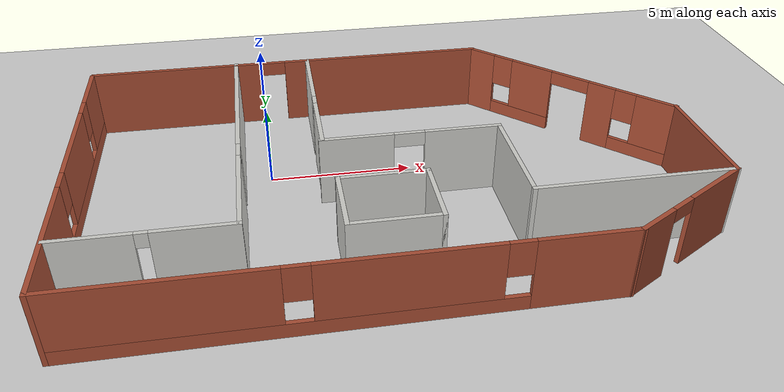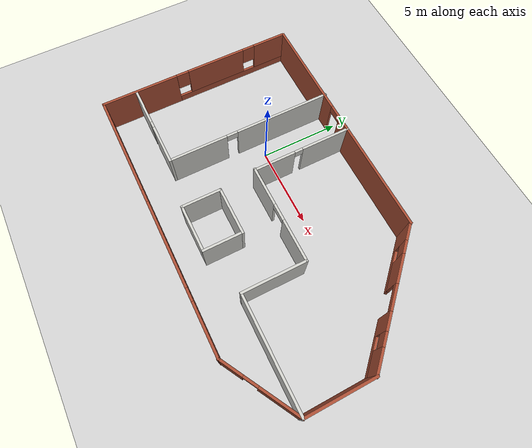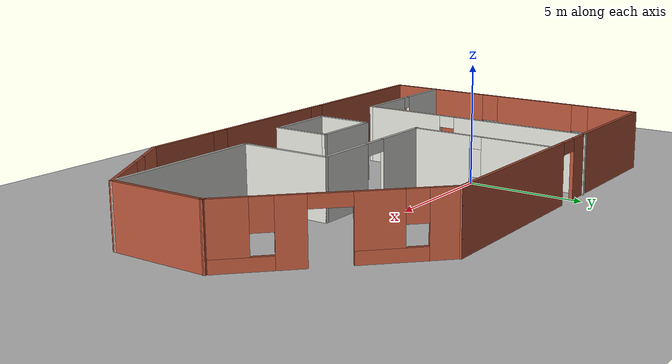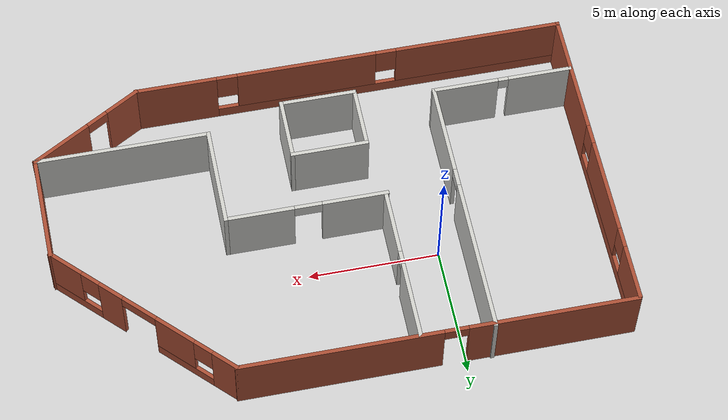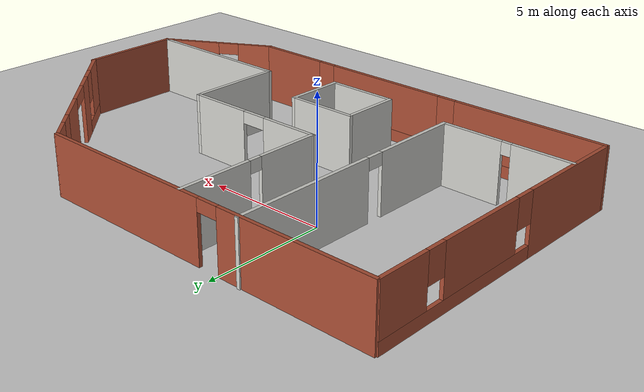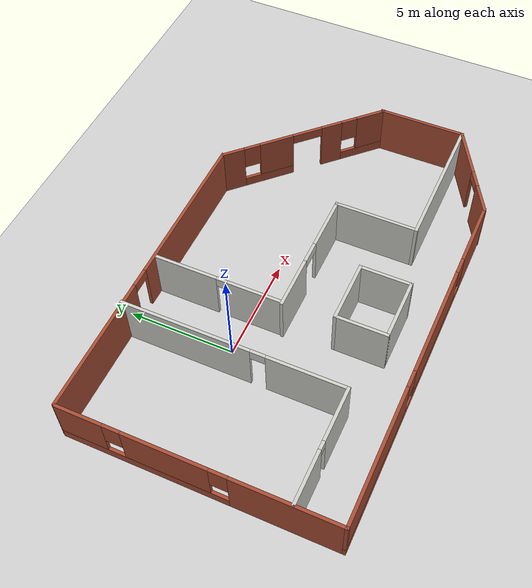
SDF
<sdf version="1.6">
 <world name="default">
  <light name="sun" type="directional">
   <pose>0 0 10 0 -0 0</pose>
   <diffuse>0.8 0.8 0.8 1</diffuse>
   <specular>0.2 0.2 0.2 1</specular>
   <attenuation>
    <range>1000</range>
    <constant>0.9</constant>
    <linear>0.01</linear>
    <quadratic>0.001</quadratic>
   </attenuation>
   <direction>-0.5 0.1 -0.9</direction>
  </light>
  <model name="ground_plane">
   <static>1</static>
   <link name="link">
    <collision name="collision">
     <geometry><plane><normal>0 0 1</normal><size>100 100</size></plane></geometry>
     <surface>
      <contact><collide_bitmask>65535</collide_bitmask></contact>
      <friction><ode><mu>100</mu><mu2>50</mu2></ode></friction>
     </surface>
    </collision>
    <visual name="visual">
     <cast_shadows>0</cast_shadows>
     <geometry><plane><normal>0 0 1</normal><size>100 100</size></plane></geometry>
     <material>
      <script><uri>file://media/materials/scripts/gazebo.material</uri><name>Gazebo/Grey</name></script>
     </material>
    </visual>
   </link>
  </model>
  <gravity>0 0 -9.8</gravity>
  <magnetic_field>6e-06 2.3e-05 -4.2e-05</magnetic_field>
  <atmosphere type="adiabatic"/>
  <physics name="default_physics" default="0" type="ode">
   <max_step_size>0.001</max_step_size>
   <real_time_factor>1</real_time_factor>
   <real_time_update_rate>1000</real_time_update_rate>
  </physics>
  <scene><ambient>0.4 0.4 0.4 1</ambient><background>0.7 0.7 0.7 1</background><shadows>1</shadows></scene>
  <spherical_coordinates>
   <surface_model>EARTH_WGS84</surface_model>
   <latitude_deg>0</latitude_deg>
   <longitude_deg>0</longitude_deg>
   <elevation>0</elevation>
   <heading_deg>0</heading_deg>
  </spherical_coordinates>
  <model name="p1">
   <pose>4.01933 -1.6816 0 0 -0 0</pose>
   <link name="Wall_1">
    <pose>-2.95825 6.20042 0 0 -0 0</pose>
    <visual name="Wall_1_Visual_0">
     <pose>-4.28368 0 1.25 0 -0 0</pose>
     <geometry><box><size>6.40204 0.15 2.5</size></box></geometry>
     <material>
      <script><uri>file://media/materials/scripts/gazebo.material</uri><name>Gazebo/Bricks</name></script>
      <ambient>1 1 1 1</ambient>
     </material>
     <meta><layer>0</layer></meta>
    </visual>
    <collision name="Wall_1_Collision_0">
     <geometry><box><size>6.40204 0.15 2.5</size></box></geometry>
     <pose>-4.28368 0 1.25 0 -0 0</pose>
    </collision>
    <visual name="Wall_1_Visual_1">
     <pose>3.65102 0 1.25 0 -0 0</pose>
     <geometry><box><size>7.66737 0.15 2.5</size></box></geometry>
     <material>
      <script><uri>file://media/materials/scripts/gazebo.material</uri><name>Gazebo/Bricks</name></script>
      <ambient>1 1 1 1</ambient>
     </material>
     <meta><layer>0</layer></meta>
    </visual>
    <collision name="Wall_1_Collision_1">
     <geometry><box><size>7.66737 0.15 2.5</size></box></geometry>
     <pose>3.65102 0 1.25 0 -0 0</pose>
    </collision>
    <visual name="Wall_1_Visual_2">
     <pose>-0.632663 0 2.25 0 -0 0</pose>
     <geometry><box><size>0.9 0.15 0.5</size></box></geometry>
     <material>
      <script><uri>file://media/materials/scripts/gazebo.material</uri><name>Gazebo/Bricks</name></script>
      <ambient>1 1 1 1</ambient>
     </material>
     <meta><layer>0</layer></meta>
    </visual>
    <collision name="Wall_1_Collision_2">
     <geometry><box><size>0.9 0.15 0.5</size></box></geometry>
     <pose>-0.632663 0 2.25 0 -0 0</pose>
    </collision>
   </link>
   <link name="Wall_11">
    <pose>-5.01467 1.08137 0 0 -0 -1.5708</pose>
    <visual name="Wall_11_Visual_0">
     <pose>-2.20612 0 1.25 0 -0 0</pose>
     <geometry><box><size>6.08777 0.15 2.5</size></box></geometry>
     <material>
      <script><uri>file://media/materials/scripts/gazebo.material</uri><name>Gazebo/CeilingTiled</name></script>
      <ambient>1 1 1 1</ambient>
     </material>
     <meta><layer>0</layer></meta>
    </visual>
    <collision name="Wall_11_Collision_0">
     <geometry><box><size>6.08777 0.15 2.5</size></box></geometry>
     <pose>-2.20612 0 1.25 0 -0 0</pose>
    </collision>
    <visual name="Wall_11_Visual_1">
     <pose>3.39389 0 1.25 0 -0 0</pose>
     <geometry><box><size>3.71223 0.15 2.5</size></box></geometry>
     <material>
      <script><uri>file://media/materials/scripts/gazebo.material</uri><name>Gazebo/CeilingTiled</name></script>
      <ambient>1 1 1 1</ambient>
     </material>
     <meta><layer>0</layer></meta>
    </visual>
    <collision name="Wall_11_Collision_1">
     <geometry><box><size>3.71223 0.15 2.5</size></box></geometry>
     <pose>3.39389 0 1.25 0 -0 0</pose>
    </collision>
    <visual name="Wall_11_Visual_2">
     <pose>1.18777 0 2.25 0 -0 0</pose>
     <geometry><box><size>0.7 0.15 0.5</size></box></geometry>
     <material>
      <script><uri>file://media/materials/scripts/gazebo.material</uri><name>Gazebo/CeilingTiled</name></script>
      <ambient>1 1 1 1</ambient>
     </material>
     <meta><layer>0</layer></meta>
    </visual>
    <collision name="Wall_11_Collision_2">
     <geometry><box><size>0.7 0.15 0.5</size></box></geometry>
     <pose>1.18777 0 2.25 0 -0 0</pose>
    </collision>
   </link>
   <link name="Wall_12">
    <pose>-7.68967 -4.09363 0 0 -0 3.14159</pose>
    <visual name="Wall_12_Visual_0">
     <pose>-1.45124 0 1.25 0 -0 0</pose>
     <geometry><box><size>2.59753 0.15 2.5</size></box></geometry>
     <material>
      <script><uri>file://media/materials/scripts/gazebo.material</uri><name>Gazebo/CeilingTiled</name></script>
      <ambient>1 1 1 1</ambient>
     </material>
     <meta><layer>0</layer></meta>
    </visual>
    <collision name="Wall_12_Collision_0">
     <geometry><box><size>2.59753 0.15 2.5</size></box></geometry>
     <pose>-1.45124 0 1.25 0 -0 0</pose>
    </collision>
    <visual name="Wall_12_Visual_1">
     <pose>1.49876 0 1.25 0 -0 0</pose>
     <geometry><box><size>2.50247 0.15 2.5</size></box></geometry>
     <material>
      <script><uri>file://media/materials/scripts/gazebo.material</uri><name>Gazebo/CeilingTiled</name></script>
      <ambient>1 1 1 1</ambient>
     </material>
     <meta><layer>0</layer></meta>
    </visual>
    <collision name="Wall_12_Collision_1">
     <geometry><box><size>2.50247 0.15 2.5</size></box></geometry>
     <pose>1.49876 0 1.25 0 -0 0</pose>
    </collision>
    <visual name="Wall_12_Visual_2">
     <pose>0.04753 0 2.25 0 -0 0</pose>
     <geometry><box><size>0.4 0.15 0.5</size></box></geometry>
     <material>
      <script><uri>file://media/materials/scripts/gazebo.material</uri><name>Gazebo/CeilingTiled</name></script>
      <ambient>1 1 1 1</ambient>
     </material>
     <meta><layer>0</layer></meta>
    </visual>
    <collision name="Wall_12_Collision_2">
     <geometry><box><size>0.4 0.15 0.5</size></box></geometry>
     <pose>0.04753 0 2.25 0 -0 0</pose>
    </collision>
   </link>
   <link name="Wall_14">
    <collision name="Wall_14_Collision">
     <geometry><box><size>6.75 0.15 2.5</size></box></geometry>
     <pose>0 0 1.25 0 -0 0</pose>
    </collision>
    <visual name="Wall_14_Visual">
     <pose>0 0 1.25 0 -0 0</pose>
     <geometry><box><size>6.75 0.15 2.5</size></box></geometry>
     <material>
      <script><uri>file://media/materials/scripts/gazebo.material</uri><name>Gazebo/CeilingTiled</name></script>
      <ambient>1 1 1 1</ambient>
     </material>
     <meta><layer>0</layer></meta>
    </visual>
    <pose>7.08639 -3.80392 0 0 -0 3.14159</pose>
   </link>
   <link name="Wall_15">
    <collision name="Wall_15_Collision">
     <geometry><box><size>4 0.15 2.5</size></box></geometry>
     <pose>0 0 1.25 0 -0 0</pose>
    </collision>
    <visual name="Wall_15_Visual">
     <pose>0 0 1.25 0 -0 0</pose>
     <geometry><box><size>4 0.15 2.5</size></box></geometry>
     <material>
      <script><uri>file://media/materials/scripts/gazebo.material</uri><name>Gazebo/CeilingTiled</name></script>
      <ambient>1 1 1 1</ambient>
     </material>
     <meta><layer>0</layer></meta>
    </visual>
    <pose>3.78639 -1.87892 0 0 -0 1.5708</pose>
   </link>
   <link name="Wall_16">
    <pose>0.736386 0.046077 0 0 -0 3.14159</pose>
    <visual name="Wall_16_Visual_0">
     <pose>-1.79436 0 1.25 0 -0 0</pose>
     <geometry><box><size>2.66127 0.15 2.5</size></box></geometry>
     <material>
      <script><uri>file://media/materials/scripts/gazebo.material</uri><name>Gazebo/CeilingTiled</name></script>
      <ambient>1 1 1 1</ambient>
     </material>
     <meta><layer>0</layer></meta>
    </visual>
    <collision name="Wall_16_Collision_0">
     <geometry><box><size>2.66127 0.15 2.5</size></box></geometry>
     <pose>-1.79436 0 1.25 0 -0 0</pose>
    </collision>
    <visual name="Wall_16_Visual_1">
     <pose>1.85563 0 1.25 0 -0 0</pose>
     <geometry><box><size>2.53873 0.15 2.5</size></box></geometry>
     <material>
      <script><uri>file://media/materials/scripts/gazebo.material</uri><name>Gazebo/CeilingTiled</name></script>
      <ambient>1 1 1 1</ambient>
     </material>
     <meta><layer>0</layer></meta>
    </visual>
    <collision name="Wall_16_Collision_1">
     <geometry><box><size>2.53873 0.15 2.5</size></box></geometry>
     <pose>1.85563 0 1.25 0 -0 0</pose>
    </collision>
    <visual name="Wall_16_Visual_2">
     <pose>0.061269 0 2.25 0 -0 0</pose>
     <geometry><box><size>1.05 0.15 0.5</size></box></geometry>
     <material>
      <script><uri>file://media/materials/scripts/gazebo.material</uri><name>Gazebo/CeilingTiled</name></script>
      <ambient>1 1 1 1</ambient>
     </material>
     <meta><layer>0</layer></meta>
    </visual>
    <collision name="Wall_16_Collision_2">
     <geometry><box><size>1.05 0.15 0.5</size></box></geometry>
     <pose>0.061269 0 2.25 0 -0 0</pose>
    </collision>
   </link>
   <link name="Wall_18">
    <collision name="Wall_18_Collision">
     <geometry><box><size>2.5 0.15 2.5</size></box></geometry>
     <pose>0 0 1.25 0 -0 0</pose>
    </collision>
    <visual name="Wall_18_Visual">
     <pose>0 0 1.25 0 -0 0</pose>
     <geometry><box><size>2.5 0.15 2.5</size></box></geometry>
     <material>
      <script><uri>file://media/materials/scripts/gazebo.material</uri><name>Gazebo/CeilingTiled</name></script>
      <ambient>1 1 1 1</ambient>
     </material>
     <meta><layer>0</layer></meta>
    </visual>
    <pose>-2.01682 -3.4533 0 0 -0 -1.5708</pose>
   </link>
   <link name="Wall_19">
    <collision name="Wall_19_Collision">
     <geometry><box><size>3 0.15 2.5</size></box></geometry>
     <pose>0 0 1.25 0 -0 0</pose>
    </collision>
    <visual name="Wall_19_Visual">
     <pose>0 0 1.25 0 -0 0</pose>
     <geometry><box><size>3 0.15 2.5</size></box></geometry>
     <material>
      <script><uri>file://media/materials/scripts/gazebo.material</uri><name>Gazebo/CeilingTiled</name></script>
      <ambient>1 1 1 1</ambient>
     </material>
     <meta><layer>0</layer></meta>
    </visual>
    <pose>-0.591824 -4.6283 0 0 -0 0</pose>
   </link>
   <link name="Wall_2">
    <pose>7.40362 3.21766 0 0 -0 -0.785398</pose>
    <visual name="Wall_2_Visual_0">
     <pose>-3.69089 0 1.25 0 -0 0</pose>
     <geometry><box><size>1.11823 0.15 2.5</size></box></geometry>
     <material>
      <script><uri>file://media/materials/scripts/gazebo.material</uri><name>Gazebo/Bricks</name></script>
      <ambient>1 1 1 1</ambient>
     </material>
     <meta><layer>0</layer></meta>
    </visual>
    <collision name="Wall_2_Collision_0">
     <geometry><box><size>1.11823 0.15 2.5</size></box></geometry>
     <pose>-3.69089 0 1.25 0 -0 0</pose>
    </collision>
    <visual name="Wall_2_Visual_1">
     <pose>1.40162 0 1.25 0 -0 0</pose>
     <geometry><box><size>1.05632 0.15 2.5</size></box></geometry>
     <material>
      <script><uri>file://media/materials/scripts/gazebo.material</uri><name>Gazebo/Bricks</name></script>
      <ambient>1 1 1 1</ambient>
     </material>
     <meta><layer>0</layer></meta>
    </visual>
    <collision name="Wall_2_Collision_1">
     <geometry><box><size>1.05632 0.15 2.5</size></box></geometry>
     <pose>1.40162 0 1.25 0 -0 0</pose>
    </collision>
    <visual name="Wall_2_Visual_2">
     <pose>-1.87916 0 0.25 0 -0 0</pose>
     <geometry><box><size>2.50523 0.15 0.5</size></box></geometry>
     <material>
      <script><uri>file://media/materials/scripts/gazebo.material</uri><name>Gazebo/Bricks</name></script>
      <ambient>1 1 1 1</ambient>
     </material>
     <meta><layer>0</layer></meta>
    </visual>
    <collision name="Wall_2_Collision_2">
     <geometry><box><size>2.50523 0.15 0.5</size></box></geometry>
     <pose>-1.87916 0 0.25 0 -0 0</pose>
    </collision>
    <visual name="Wall_2_Visual_3">
     <pose>3.08989 0 0.25 0 -0 0</pose>
     <geometry><box><size>2.32022 0.15 0.5</size></box></geometry>
     <material>
      <script><uri>file://media/materials/scripts/gazebo.material</uri><name>Gazebo/Bricks</name></script>
      <ambient>1 1 1 1</ambient>
     </material>
     <meta><layer>0</layer></meta>
    </visual>
    <collision name="Wall_2_Collision_3">
     <geometry><box><size>2.32022 0.15 0.5</size></box></geometry>
     <pose>3.08989 0 0.25 0 -0 0</pose>
    </collision>
    <visual name="Wall_2_Visual_4">
     <pose>-1.47916 0 1.5 0 -0 0</pose>
     <geometry><box><size>1.70523 0.15 2</size></box></geometry>
     <material>
      <script><uri>file://media/materials/scripts/gazebo.material</uri><name>Gazebo/Bricks</name></script>
      <ambient>1 1 1 1</ambient>
     </material>
     <meta><layer>0</layer></meta>
    </visual>
    <collision name="Wall_2_Collision_4">
     <geometry><box><size>1.70523 0.15 2</size></box></geometry>
     <pose>-1.47916 0 1.5 0 -0 0</pose>
    </collision>
    <visual name="Wall_2_Visual_5">
     <pose>-1.47916 0 1.5 0 -0 0</pose>
     <geometry><box><size>1.70523 0.15 2</size></box></geometry>
     <material>
      <script><uri>file://media/materials/scripts/gazebo.material</uri><name>Gazebo/Bricks</name></script>
      <ambient>1 1 1 1</ambient>
     </material>
     <meta><layer>0</layer></meta>
    </visual>
    <collision name="Wall_2_Collision_5">
     <geometry><box><size>1.70523 0.15 2</size></box></geometry>
     <pose>-1.47916 0 1.5 0 -0 0</pose>
    </collision>
    <visual name="Wall_2_Visual_6">
     <pose>3.48989 0 1.5 0 -0 0</pose>
     <geometry><box><size>1.52022 0.15 2</size></box></geometry>
     <material>
      <script><uri>file://media/materials/scripts/gazebo.material</uri><name>Gazebo/Bricks</name></script>
      <ambient>1 1 1 1</ambient>
     </material>
     <meta><layer>0</layer></meta>
    </visual>
    <collision name="Wall_2_Collision_6">
     <geometry><box><size>1.52022 0.15 2</size></box></geometry>
     <pose>3.48989 0 1.5 0 -0 0</pose>
    </collision>
    <visual name="Wall_2_Visual_7">
     <pose>-2.73177 0 1.9 0 -0 0</pose>
     <geometry><box><size>0.8 0.15 1.2</size></box></geometry>
     <material>
      <script><uri>file://media/materials/scripts/gazebo.material</uri><name>Gazebo/Bricks</name></script>
      <ambient>1 1 1 1</ambient>
     </material>
     <meta><layer>0</layer></meta>
    </visual>
    <collision name="Wall_2_Collision_7">
     <geometry><box><size>0.8 0.15 1.2</size></box></geometry>
     <pose>-2.73177 0 1.9 0 -0 0</pose>
    </collision>
    <visual name="Wall_2_Visual_8">
     <pose>2.32978 0 1.9 0 -0 0</pose>
     <geometry><box><size>0.8 0.15 1.2</size></box></geometry>
     <material>
      <script><uri>file://media/materials/scripts/gazebo.material</uri><name>Gazebo/Bricks</name></script>
      <ambient>1 1 1 1</ambient>
     </material>
     <meta><layer>0</layer></meta>
    </visual>
    <collision name="Wall_2_Collision_8">
     <geometry><box><size>0.8 0.15 1.2</size></box></geometry>
     <pose>2.32978 0 1.9 0 -0 0</pose>
    </collision>
    <visual name="Wall_2_Visual_9">
     <pose>0.12346 0 2.25 0 -0 0</pose>
     <geometry><box><size>1.5 0.15 0.5</size></box></geometry>
     <material>
      <script><uri>file://media/materials/scripts/gazebo.material</uri><name>Gazebo/Bricks</name></script>
      <ambient>1 1 1 1</ambient>
     </material>
     <meta><layer>0</layer></meta>
    </visual>
    <collision name="Wall_2_Collision_9">
     <geometry><box><size>1.5 0.15 0.5</size></box></geometry>
     <pose>0.12346 0 2.25 0 -0 0</pose>
    </collision>
    <visual name="Wall_2_Visual_10">
     <pose>0.12346 0 2.25 0 -0 0</pose>
     <geometry><box><size>1.5 0.15 0.5</size></box></geometry>
     <material>
      <script><uri>file://media/materials/scripts/gazebo.material</uri><name>Gazebo/Bricks</name></script>
      <ambient>1 1 1 1</ambient>
     </material>
     <meta><layer>0</layer></meta>
    </visual>
    <collision name="Wall_2_Collision_10">
     <geometry><box><size>1.5 0.15 0.5</size></box></geometry>
     <pose>0.12346 0 2.25 0 -0 0</pose>
    </collision>
   </link>
   <link name="Wall_20">
    <collision name="Wall_20_Collision">
     <geometry><box><size>2.5 0.15 2.5</size></box></geometry>
     <pose>0 0 1.25 0 -0 0</pose>
    </collision>
    <visual name="Wall_20_Visual">
     <pose>0 0 1.25 0 -0 0</pose>
     <geometry><box><size>2.5 0.15 2.5</size></box></geometry>
     <material>
      <script><uri>file://media/materials/scripts/gazebo.material</uri><name>Gazebo/CeilingTiled</name></script>
      <ambient>1 1 1 1</ambient>
     </material>
     <meta><layer>0</layer></meta>
    </visual>
    <pose>0.833176 -3.4533 0 0 -0 1.5708</pose>
   </link>
   <link name="Wall_21">
    <collision name="Wall_21_Collision">
     <geometry><box><size>3 0.15 2.5</size></box></geometry>
     <pose>0 0 1.25 0 -0 0</pose>
    </collision>
    <visual name="Wall_21_Visual">
     <pose>0 0 1.25 0 -0 0</pose>
     <geometry><box><size>3 0.15 2.5</size></box></geometry>
     <material>
      <script><uri>file://media/materials/scripts/gazebo.material</uri><name>Gazebo/CeilingTiled</name></script>
      <ambient>1 1 1 1</ambient>
     </material>
     <meta><layer>0</layer></meta>
    </visual>
    <pose>-0.591824 -2.2783 0 0 -0 3.14159</pose>
   </link>
   <link name="Wall_3">
    <collision name="Wall_3_Collision">
     <geometry><box><size>4.25011 0.15 2.5</size></box></geometry>
     <pose>0 0 1.25 0 -0 0</pose>
    </collision>
    <visual name="Wall_3_Visual">
     <pose>0 0 1.25 0 -0 0</pose>
     <geometry><box><size>4.25011 0.15 2.5</size></box></geometry>
     <material>
      <script><uri>file://media/materials/scripts/gazebo.material</uri><name>Gazebo/Bricks</name></script>
      <ambient>1 1 1 1</ambient>
     </material>
     <meta><layer>0</layer></meta>
    </visual>
    <pose>10.3711 -1.75392 0 0 -0 -1.56333</pose>
   </link>
   <link name="Wall_4">
    <pose>8.28627 -5.01642 0 0 -0 -2.61799</pose>
    <visual name="Wall_4_Visual_0">
     <pose>-1.2139 0 1.25 0 -0 0</pose>
     <geometry><box><size>2.57221 0.15 2.5</size></box></geometry>
     <material>
      <script><uri>file://media/materials/scripts/gazebo.material</uri><name>Gazebo/Bricks</name></script>
      <ambient>1 1 1 1</ambient>
     </material>
     <meta><layer>0</layer></meta>
    </visual>
    <collision name="Wall_4_Collision_0">
     <geometry><box><size>2.57221 0.15 2.5</size></box></geometry>
     <pose>-1.2139 0 1.25 0 -0 0</pose>
    </collision>
    <visual name="Wall_4_Visual_1">
     <pose>1.7361 0 1.25 0 -0 0</pose>
     <geometry><box><size>1.52779 0.15 2.5</size></box></geometry>
     <material>
      <script><uri>file://media/materials/scripts/gazebo.material</uri><name>Gazebo/Bricks</name></script>
      <ambient>1 1 1 1</ambient>
     </material>
     <meta><layer>0</layer></meta>
    </visual>
    <collision name="Wall_4_Collision_1">
     <geometry><box><size>1.52779 0.15 2.5</size></box></geometry>
     <pose>1.7361 0 1.25 0 -0 0</pose>
    </collision>
    <visual name="Wall_4_Visual_2">
     <pose>0.522207 0 2.25 0 -0 0</pose>
     <geometry><box><size>0.9 0.15 0.5</size></box></geometry>
     <material>
      <script><uri>file://media/materials/scripts/gazebo.material</uri><name>Gazebo/Bricks</name></script>
      <ambient>1 1 1 1</ambient>
     </material>
     <meta><layer>0</layer></meta>
    </visual>
    <collision name="Wall_4_Collision_2">
     <geometry><box><size>0.9 0.15 0.5</size></box></geometry>
     <pose>0.522207 0 2.25 0 -0 0</pose>
    </collision>
   </link>
   <link name="Wall_5">
    <pose>-2.11384 -6.22892 0 0 -0 3.14159</pose>
    <visual name="Wall_5_Visual_0">
     <pose>-6.77616 0 1.25 0 -0 0</pose>
     <geometry><box><size>3.19768 0.15 2.5</size></box></geometry>
     <material>
      <script><uri>file://media/materials/scripts/gazebo.material</uri><name>Gazebo/Bricks</name></script>
      <ambient>1 1 1 1</ambient>
     </material>
     <meta><layer>0</layer></meta>
    </visual>
    <collision name="Wall_5_Collision_0">
     <geometry><box><size>3.19768 0.15 2.5</size></box></geometry>
     <pose>-6.77616 0 1.25 0 -0 0</pose>
    </collision>
    <visual name="Wall_5_Visual_1">
     <pose>1.59884 0 0.25 0 -0 0</pose>
     <geometry><box><size>13.5523 0.15 0.5</size></box></geometry>
     <material>
      <script><uri>file://media/materials/scripts/gazebo.material</uri><name>Gazebo/Bricks</name></script>
      <ambient>1 1 1 1</ambient>
     </material>
     <meta><layer>0</layer></meta>
    </visual>
    <collision name="Wall_5_Collision_1">
     <geometry><box><size>13.5523 0.15 0.5</size></box></geometry>
     <pose>1.59884 0 0.25 0 -0 0</pose>
    </collision>
    <visual name="Wall_5_Visual_2">
     <pose>-1.65712 0 1.5 0 -0 0</pose>
     <geometry><box><size>5.44041 0.15 2</size></box></geometry>
     <material>
      <script><uri>file://media/materials/scripts/gazebo.material</uri><name>Gazebo/Bricks</name></script>
      <ambient>1 1 1 1</ambient>
     </material>
     <meta><layer>0</layer></meta>
    </visual>
    <collision name="Wall_5_Collision_2">
     <geometry><box><size>5.44041 0.15 2</size></box></geometry>
     <pose>-1.65712 0 1.5 0 -0 0</pose>
    </collision>
    <visual name="Wall_5_Visual_3">
     <pose>5.11904 0 1.5 0 -0 0</pose>
     <geometry><box><size>6.51191 0.15 2</size></box></geometry>
     <material>
      <script><uri>file://media/materials/scripts/gazebo.material</uri><name>Gazebo/Bricks</name></script>
      <ambient>1 1 1 1</ambient>
     </material>
     <meta><layer>0</layer></meta>
    </visual>
    <collision name="Wall_5_Collision_3">
     <geometry><box><size>6.51191 0.15 2</size></box></geometry>
     <pose>5.11904 0 1.5 0 -0 0</pose>
    </collision>
    <visual name="Wall_5_Visual_4">
     <pose>-4.77732 0 1.9 0 -0 0</pose>
     <geometry><box><size>0.8 0.15 1.2</size></box></geometry>
     <material>
      <script><uri>file://media/materials/scripts/gazebo.material</uri><name>Gazebo/Bricks</name></script>
      <ambient>1 1 1 1</ambient>
     </material>
     <meta><layer>0</layer></meta>
    </visual>
    <collision name="Wall_5_Collision_4">
     <geometry><box><size>0.8 0.15 1.2</size></box></geometry>
     <pose>-4.77732 0 1.9 0 -0 0</pose>
    </collision>
    <visual name="Wall_5_Visual_5">
     <pose>1.46309 0 1.9 0 -0 0</pose>
     <geometry><box><size>0.8 0.15 1.2</size></box></geometry>
     <material>
      <script><uri>file://media/materials/scripts/gazebo.material</uri><name>Gazebo/Bricks</name></script>
      <ambient>1 1 1 1</ambient>
     </material>
     <meta><layer>0</layer></meta>
    </visual>
    <collision name="Wall_5_Collision_5">
     <geometry><box><size>0.8 0.15 1.2</size></box></geometry>
     <pose>1.46309 0 1.9 0 -0 0</pose>
    </collision>
   </link>
   <link name="Wall_7">
    <pose>-10.4138 -0.053923 0 0 -0 1.5708</pose>
    <visual name="Wall_7_Visual_0">
     <pose>-3.79479 0 1.25 0 -0 0</pose>
     <geometry><box><size>4.91041 0.15 2.5</size></box></geometry>
     <material>
      <script><uri>file://media/materials/scripts/gazebo.material</uri><name>Gazebo/Bricks</name></script>
      <ambient>1 1 1 1</ambient>
     </material>
     <meta><layer>0</layer></meta>
    </visual>
    <collision name="Wall_7_Collision_0">
     <geometry><box><size>4.91041 0.15 2.5</size></box></geometry>
     <pose>-3.79479 0 1.25 0 -0 0</pose>
    </collision>
    <visual name="Wall_7_Visual_1">
     <pose>2.45521 0 0.25 0 -0 0</pose>
     <geometry><box><size>7.58959 0.15 0.5</size></box></geometry>
     <material>
      <script><uri>file://media/materials/scripts/gazebo.material</uri><name>Gazebo/Bricks</name></script>
      <ambient>1 1 1 1</ambient>
     </material>
     <meta><layer>0</layer></meta>
    </visual>
    <collision name="Wall_7_Collision_1">
     <geometry><box><size>7.58959 0.15 0.5</size></box></geometry>
     <pose>2.45521 0 0.25 0 -0 0</pose>
    </collision>
    <visual name="Wall_7_Visual_2">
     <pose>1.36998 0 1.5 0 -0 0</pose>
     <geometry><box><size>3.81913 0.15 2</size></box></geometry>
     <material>
      <script><uri>file://media/materials/scripts/gazebo.material</uri><name>Gazebo/Bricks</name></script>
      <ambient>1 1 1 1</ambient>
     </material>
     <meta><layer>0</layer></meta>
    </visual>
    <collision name="Wall_7_Collision_2">
     <geometry><box><size>3.81913 0.15 2</size></box></geometry>
     <pose>1.36998 0 1.5 0 -0 0</pose>
    </collision>
    <visual name="Wall_7_Visual_3">
     <pose>5.16477 0 1.5 0 -0 0</pose>
     <geometry><box><size>2.17046 0.15 2</size></box></geometry>
     <material>
      <script><uri>file://media/materials/scripts/gazebo.material</uri><name>Gazebo/Bricks</name></script>
      <ambient>1 1 1 1</ambient>
     </material>
     <meta><layer>0</layer></meta>
    </visual>
    <collision name="Wall_7_Collision_3">
     <geometry><box><size>2.17046 0.15 2</size></box></geometry>
     <pose>5.16477 0 1.5 0 -0 0</pose>
    </collision>
    <visual name="Wall_7_Visual_4">
     <pose>-0.939587 0 1.9 0 -0 0</pose>
     <geometry><box><size>0.8 0.15 1.2</size></box></geometry>
     <material>
      <script><uri>file://media/materials/scripts/gazebo.material</uri><name>Gazebo/Bricks</name></script>
      <ambient>1 1 1 1</ambient>
     </material>
     <meta><layer>0</layer></meta>
    </visual>
    <collision name="Wall_7_Collision_4">
     <geometry><box><size>0.8 0.15 1.2</size></box></geometry>
     <pose>-0.939587 0 1.9 0 -0 0</pose>
    </collision>
    <visual name="Wall_7_Visual_5">
     <pose>3.67954 0 1.9 0 -0 0</pose>
     <geometry><box><size>0.8 0.15 1.2</size></box></geometry>
     <material>
      <script><uri>file://media/materials/scripts/gazebo.material</uri><name>Gazebo/Bricks</name></script>
      <ambient>1 1 1 1</ambient>
     </material>
     <meta><layer>0</layer></meta>
    </visual>
    <collision name="Wall_7_Collision_5">
     <geometry><box><size>0.8 0.15 1.2</size></box></geometry>
     <pose>3.67954 0 1.9 0 -0 0</pose>
    </collision>
   </link>
   <link name="Wall_9">
    <pose>-2.26155 3.14519 0 0 -0 -1.5708</pose>
    <visual name="Wall_9_Visual_0">
     <pose>-1.56688 0 1.25 0 -0 0</pose>
     <geometry><box><size>3.11625 0.15 2.5</size></box></geometry>
     <material>
      <script><uri>file://media/materials/scripts/gazebo.material</uri><name>Gazebo/CeilingTiled</name></script>
      <ambient>1 1 1 1</ambient>
     </material>
     <meta><layer>0</layer></meta>
    </visual>
    <collision name="Wall_9_Collision_0">
     <geometry><box><size>3.11625 0.15 2.5</size></box></geometry>
     <pose>-1.56688 0 1.25 0 -0 0</pose>
    </collision>
    <visual name="Wall_9_Visual_1">
     <pose>1.82062 0 1.25 0 -0 0</pose>
     <geometry><box><size>2.60875 0.15 2.5</size></box></geometry>
     <material>
      <script><uri>file://media/materials/scripts/gazebo.material</uri><name>Gazebo/CeilingTiled</name></script>
      <ambient>1 1 1 1</ambient>
     </material>
     <meta><layer>0</layer></meta>
    </visual>
    <collision name="Wall_9_Collision_1">
     <geometry><box><size>2.60875 0.15 2.5</size></box></geometry>
     <pose>1.82062 0 1.25 0 -0 0</pose>
    </collision>
    <visual name="Wall_9_Visual_2">
     <pose>0.253745 0 2.25 0 -0 0</pose>
     <geometry><box><size>0.525 0.15 0.5</size></box></geometry>
     <material>
      <script><uri>file://media/materials/scripts/gazebo.material</uri><name>Gazebo/CeilingTiled</name></script>
      <ambient>1 1 1 1</ambient>
     </material>
     <meta><layer>0</layer></meta>
    </visual>
    <collision name="Wall_9_Collision_2">
     <geometry><box><size>0.525 0.15 0.5</size></box></geometry>
     <pose>0.253745 0 2.25 0 -0 0</pose>
    </collision>
   </link>
   <static>1</static>
  </model>
 </world>
</sdf>
